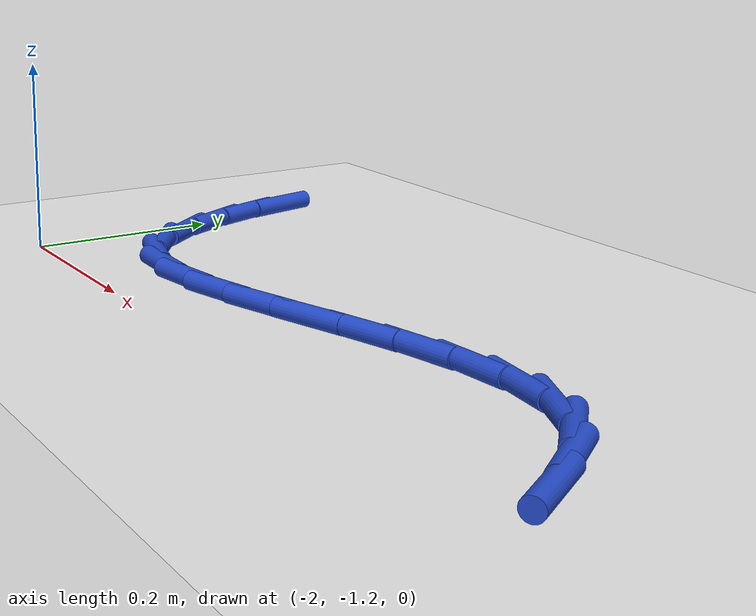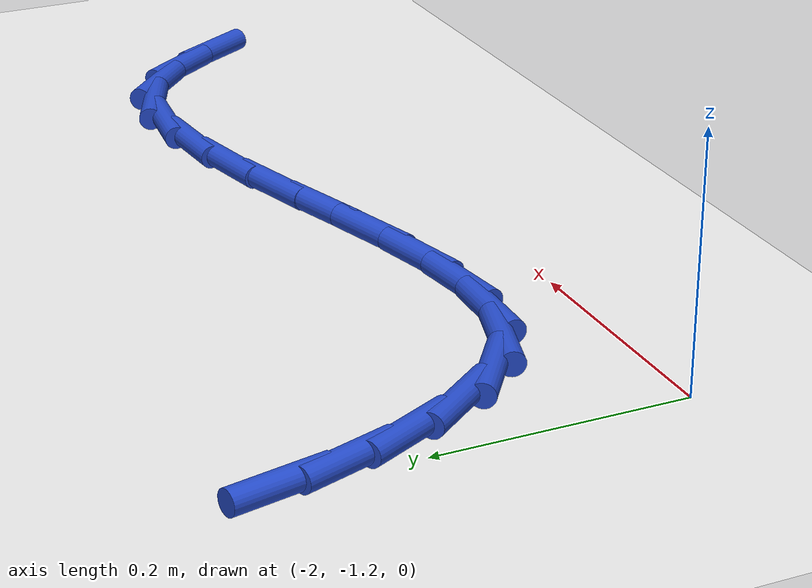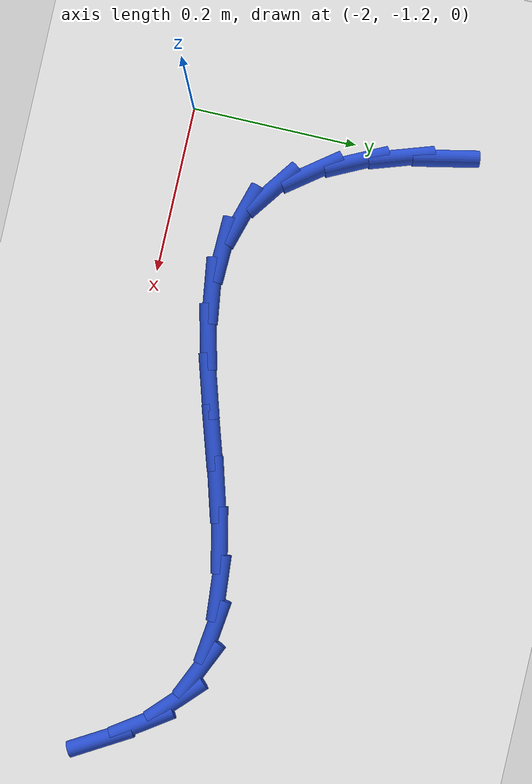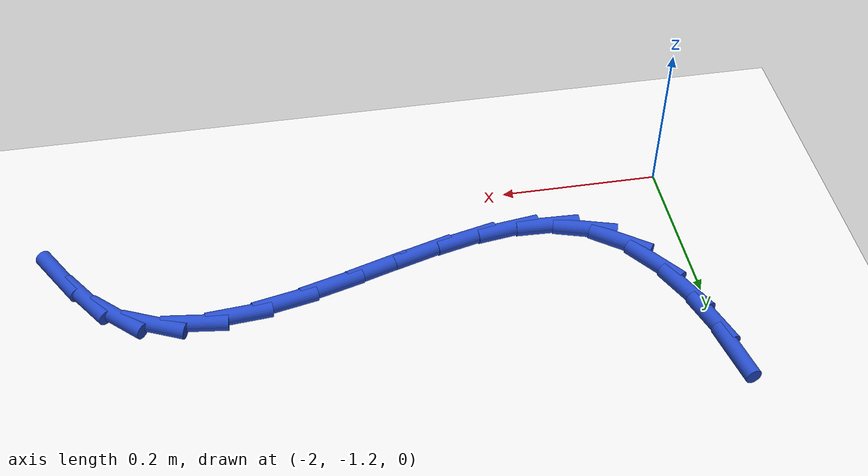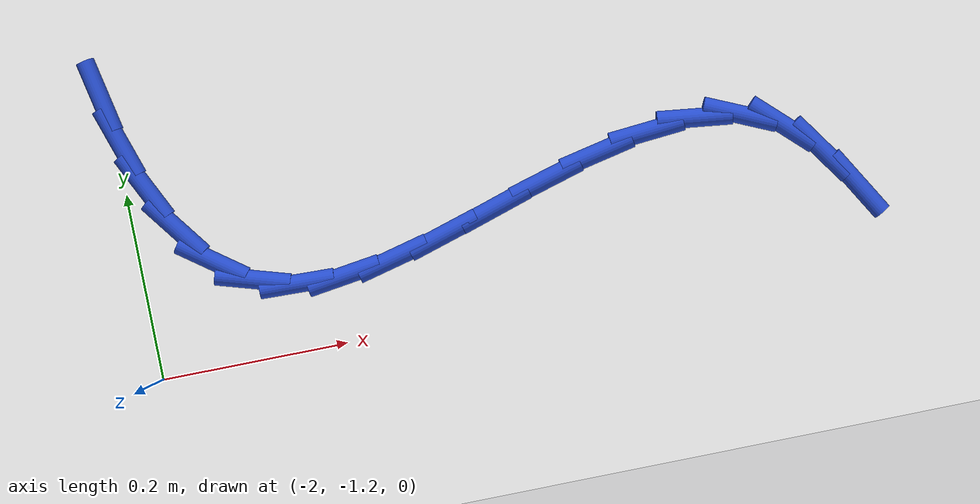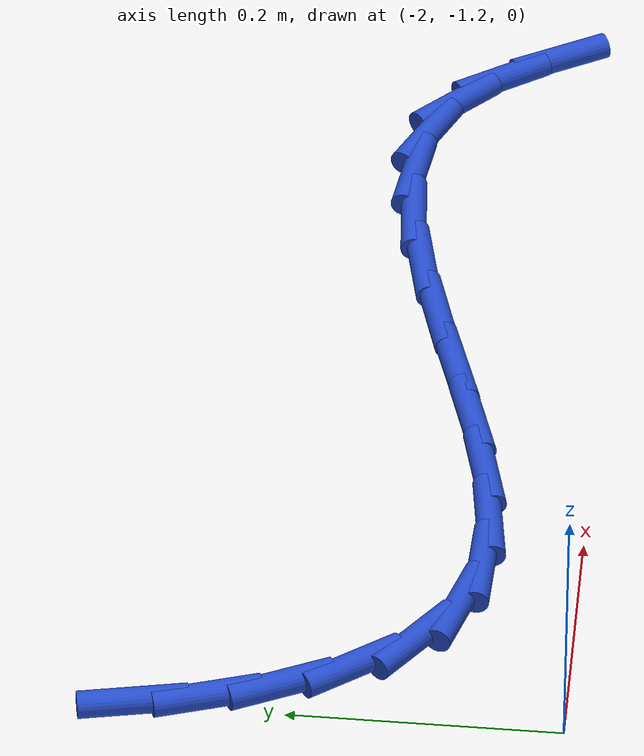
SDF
<sdf version="1.6">
 <world name="default">
  <model name="ground_plane">
   <static>1</static>
   <link name="link">
    <collision name="collision">
     <geometry><plane><normal>0 0 1</normal><size>100 100</size></plane></geometry>
     <surface><friction><ode><mu>100</mu><mu2>50</mu2></ode></friction></surface>
    </collision>
    <visual name="visual">
     <cast_shadows>0</cast_shadows>
     <geometry><plane><normal>0 0 1</normal><size>100 100</size></plane></geometry>
     <material>
      <script><uri>file://media/materials/scripts/gazebo.material</uri><name>Gazebo/WhiteGlow</name></script>
     </material>
    </visual>
   </link>
  </model>
  <model name="line">
   <link name="link_95">
    <pose>-2.0060227743302783 -0.8921701181407171 0.01 0 1.57 -1.3669708003092622</pose>
    <collision name="collision">
     <geometry><cylinder><radius>0.01</radius><length>0.08</length></cylinder></geometry>
    </collision>
    <visual name="visual">
     <material>
      <script><name>Gazebo/Blue</name><uri>file://media/materials/scripts/gazebo.material</uri></script>
     </material>
     <geometry><cylinder><radius>0.01</radius><length>0.08</length></cylinder></geometry>
    </visual>
   </link>
   <link name="link_96">
    <pose>-1.99528566609323 -0.9441165277084977 0.01 0 1.57 -1.251284721239663</pose>
    <collision name="collision">
     <geometry><cylinder><radius>0.01</radius><length>0.08</length></cylinder></geometry>
    </collision>
    <visual name="visual">
     <material>
      <script><name>Gazebo/Blue</name><uri>file://media/materials/scripts/gazebo.material</uri></script>
     </material>
     <geometry><cylinder><radius>0.01</radius><length>0.08</length></cylinder></geometry>
    </visual>
   </link>
   <link name="link_97">
    <pose>-1.978380635012516 -0.9952126760736699 0.01 0 1.57 -1.1169213691341602</pose>
    <collision name="collision">
     <geometry><cylinder><radius>0.01</radius><length>0.08</length></cylinder></geometry>
    </collision>
    <visual name="visual">
     <material>
      <script><name>Gazebo/Blue</name><uri>file://media/materials/scripts/gazebo.material</uri></script>
     </material>
     <geometry><cylinder><radius>0.01</radius><length>0.08</length></cylinder></geometry>
    </visual>
   </link>
   <link name="link_98">
    <pose>-1.954434148609735 -1.0442991168788764 0.01 0 1.57 -0.9281359129124143</pose>
    <collision name="collision">
     <geometry><cylinder><radius>0.01</radius><length>0.08</length></cylinder></geometry>
    </collision>
    <visual name="visual">
     <material>
      <script><name>Gazebo/Blue</name><uri>file://media/materials/scripts/gazebo.material</uri></script>
     </material>
     <geometry><cylinder><radius>0.01</radius><length>0.08</length></cylinder></geometry>
    </visual>
   </link>
   <link name="link_99">
    <pose>-1.9232192191276565 -1.0859919997638077 0.01 0 1.57 -0.6313474017750134</pose>
    <collision name="collision">
     <geometry><cylinder><radius>0.01</radius><length>0.08</length></cylinder></geometry>
    </collision>
    <visual name="visual">
     <material>
      <script><name>Gazebo/Blue</name><uri>file://media/materials/scripts/gazebo.material</uri></script>
     </material>
     <geometry><cylinder><radius>0.01</radius><length>0.08</length></cylinder></geometry>
    </visual>
   </link>
   <link name="link_100">
    <pose>-1.8847309914720318 -1.1141338394425149 0.01 0 1.57 -0.2909885675675455</pose>
    <collision name="collision">
     <geometry><cylinder><radius>0.01</radius><length>0.08</length></cylinder></geometry>
    </collision>
    <visual name="visual">
     <material>
      <script><name>Gazebo/Blue</name><uri>file://media/materials/scripts/gazebo.material</uri></script>
     </material>
     <geometry><cylinder><radius>0.01</radius><length>0.08</length></cylinder></geometry>
    </visual>
   </link>
   <link name="link_101">
    <pose>-1.8396761556160794 -1.1276272989107816 0.01 0 1.57 -0.030380006260114303</pose>
    <collision name="collision">
     <geometry><cylinder><radius>0.01</radius><length>0.08</length></cylinder></geometry>
    </collision>
    <visual name="visual">
     <material>
      <script><name>Gazebo/Blue</name><uri>file://media/materials/scripts/gazebo.material</uri></script>
     </material>
     <geometry><cylinder><radius>0.01</radius><length>0.08</length></cylinder></geometry>
    </visual>
   </link>
   <link name="link_102">
    <pose>-1.7892934051521892 -1.129158398254311 0.01 0 1.57 0.1396341914482582</pose>
    <collision name="collision">
     <geometry><cylinder><radius>0.01</radius><length>0.08</length></cylinder></geometry>
    </collision>
    <visual name="visual">
     <material>
      <script><name>Gazebo/Blue</name><uri>file://media/materials/scripts/gazebo.material</uri></script>
     </material>
     <geometry><cylinder><radius>0.01</radius><length>0.08</length></cylinder></geometry>
    </visual>
   </link>
   <link name="link_103">
    <pose>-1.7348342393730776 -1.121504225618067 0.01 0 1.57 0.24072432400161206</pose>
    <collision name="collision">
     <geometry><cylinder><radius>0.01</radius><length>0.08</length></cylinder></geometry>
    </collision>
    <visual name="visual">
     <material>
      <script><name>Gazebo/Blue</name><uri>file://media/materials/scripts/gazebo.material</uri></script>
     </material>
     <geometry><cylinder><radius>0.01</radius><length>0.08</length></cylinder></geometry>
    </visual>
   </link>
   <link name="link_104">
    <pose>-1.6775501575714635 -1.1074418691470145 0.01 0 1.57 0.29202100076240944</pose>
    <collision name="collision">
     <geometry><cylinder><radius>0.01</radius><length>0.08</length></cylinder></geometry>
    </collision>
    <visual name="visual">
     <material>
      <script><name>Gazebo/Blue</name><uri>file://media/materials/scripts/gazebo.material</uri></script>
     </material>
     <geometry><cylinder><radius>0.01</radius><length>0.08</length></cylinder></geometry>
    </visual>
   </link>
   <link name="link_105">
    <pose>-1.6186926590400619 -1.0897484169861174 0.01 0 1.57 0.3037142918600529</pose>
    <collision name="collision">
     <geometry><cylinder><radius>0.01</radius><length>0.08</length></cylinder></geometry>
    </collision>
    <visual name="visual">
     <material>
      <script><name>Gazebo/Blue</name><uri>file://media/materials/scripts/gazebo.material</uri></script>
     </material>
     <geometry><cylinder><radius>0.01</radius><length>0.08</length></cylinder></geometry>
    </visual>
   </link>
   <link name="link_106">
    <pose>-1.5595132430715921 -1.0712009572803407 0.01 0 1.57 0.27800710756492775</pose>
    <collision name="collision">
     <geometry><cylinder><radius>0.01</radius><length>0.08</length></cylinder></geometry>
    </collision>
    <visual name="visual">
     <material>
      <script><name>Gazebo/Blue</name><uri>file://media/materials/scripts/gazebo.material</uri></script>
     </material>
     <geometry><cylinder><radius>0.01</radius><length>0.08</length></cylinder></geometry>
    </visual>
   </link>
   <link name="link_107">
    <pose>-1.5012634089587684 -1.0545765781746483 0.01 0 1.57 0.20954921414575448</pose>
    <collision name="collision">
     <geometry><cylinder><radius>0.01</radius><length>0.08</length></cylinder></geometry>
    </collision>
    <visual name="visual">
     <material>
      <script><name>Gazebo/Blue</name><uri>file://media/materials/scripts/gazebo.material</uri></script>
     </material>
     <geometry><cylinder><radius>0.01</radius><length>0.08</length></cylinder></geometry>
    </visual>
   </link>
   <link name="link_108">
    <pose>-1.4451946559943094 -1.0426523678140047 0.01 0 1.57 0.0842845906432492</pose>
    <collision name="collision">
     <geometry><cylinder><radius>0.01</radius><length>0.08</length></cylinder></geometry>
    </collision>
    <visual name="visual">
     <material>
      <script><name>Gazebo/Blue</name><uri>file://media/materials/scripts/gazebo.material</uri></script>
     </material>
     <geometry><cylinder><radius>0.01</radius><length>0.08</length></cylinder></geometry>
    </visual>
   </link>
   <link name="link_109">
    <pose>-1.3925584834709326 -1.0382054143433745 0.01 0 1.57 -0.12052124920180048</pose>
    <collision name="collision">
     <geometry><cylinder><radius>0.01</radius><length>0.08</length></cylinder></geometry>
    </collision>
    <visual name="visual">
     <material>
      <script><name>Gazebo/Blue</name><uri>file://media/materials/scripts/gazebo.material</uri></script>
     </material>
     <geometry><cylinder><radius>0.01</radius><length>0.08</length></cylinder></geometry>
    </visual>
   </link>
   <link name="link_110">
    <pose>-1.3446063906813528 -1.0440128059077218 0.01 0 1.57 -0.4214952215860575</pose>
    <collision name="collision">
     <geometry><cylinder><radius>0.01</radius><length>0.08</length></cylinder></geometry>
    </collision>
    <visual name="visual">
     <material>
      <script><name>Gazebo/Blue</name><uri>file://media/materials/scripts/gazebo.material</uri></script>
     </material>
     <geometry><cylinder><radius>0.01</radius><length>0.08</length></cylinder></geometry>
    </visual>
   </link>
   <link name="link_111">
    <pose>-1.302589876918289 -1.0628516306520117 0.01 0 1.57 -0.7612343685741033</pose>
    <collision name="collision">
     <geometry><cylinder><radius>0.01</radius><length>0.08</length></cylinder></geometry>
    </collision>
    <visual name="visual">
     <material>
      <script><name>Gazebo/Blue</name><uri>file://media/materials/scripts/gazebo.material</uri></script>
     </material>
     <geometry><cylinder><radius>0.01</radius><length>0.08</length></cylinder></geometry>
    </visual>
   </link>
   <link name="link_112">
    <pose>-1.267328511704261 -1.0964487887209127 0.01 0 1.57 -0.9679346186858079</pose>
    <collision name="collision">
     <geometry><cylinder><radius>0.01</radius><length>0.08</length></cylinder></geometry>
    </collision>
    <visual name="visual">
     <material>
      <script><name>Gazebo/Blue</name><uri>file://media/materials/scripts/gazebo.material</uri></script>
     </material>
     <geometry><cylinder><radius>0.01</radius><length>0.08</length></cylinder></geometry>
    </visual>
   </link>
   <link name="link_113">
    <pose>-1.2371032328053715 -1.140358786523557 0.01 0 1.57 -1.0410424214952743</pose>
    <collision name="collision">
     <geometry><cylinder><radius>0.01</radius><length>0.08</length></cylinder></geometry>
    </collision>
    <visual name="visual">
     <material>
      <script><name>Gazebo/Blue</name><uri>file://media/materials/scripts/gazebo.material</uri></script>
     </material>
     <geometry><cylinder><radius>0.01</radius><length>0.08</length></cylinder></geometry>
    </visual>
   </link>
  </model>
 </world>
</sdf>
